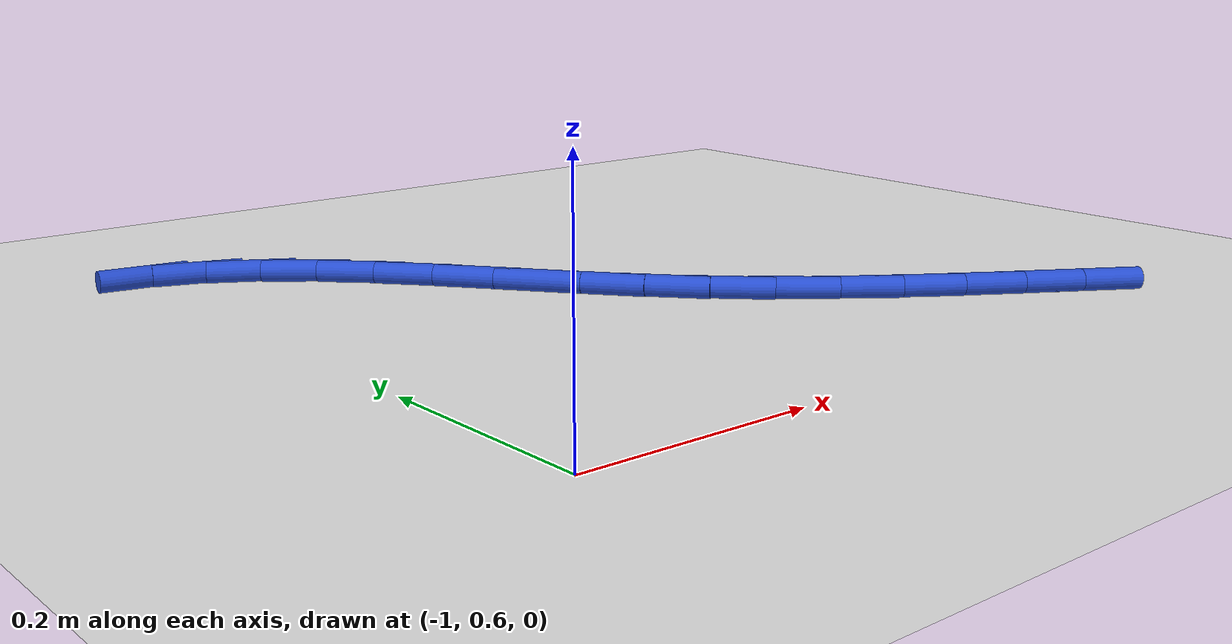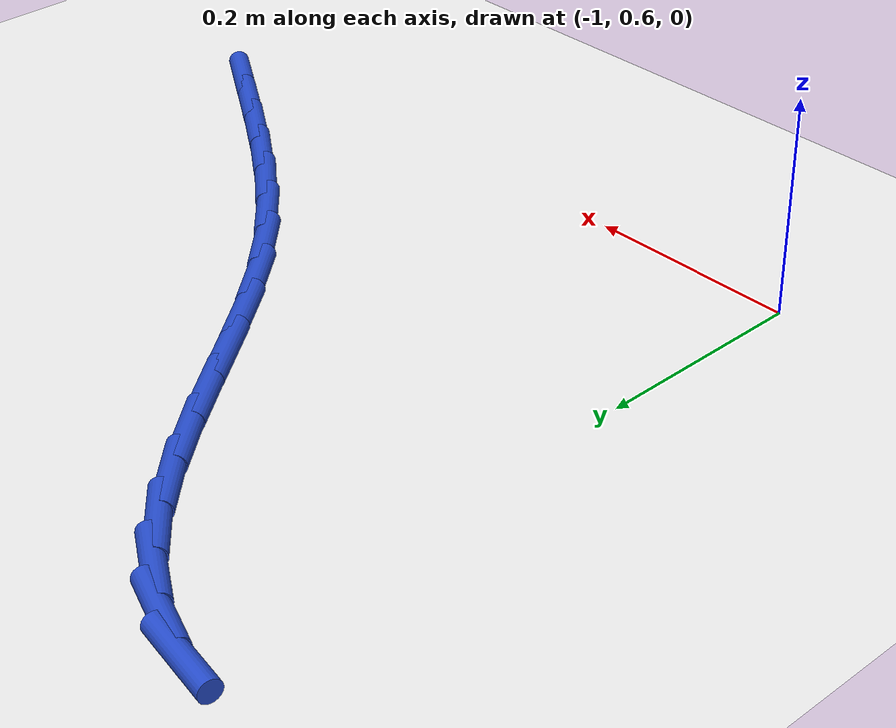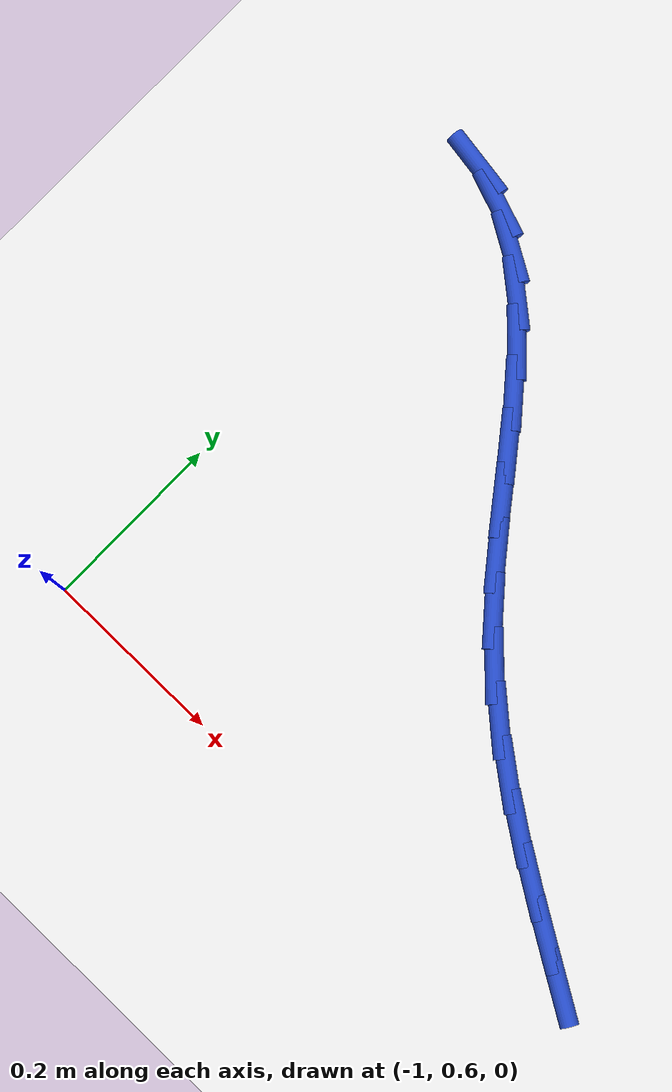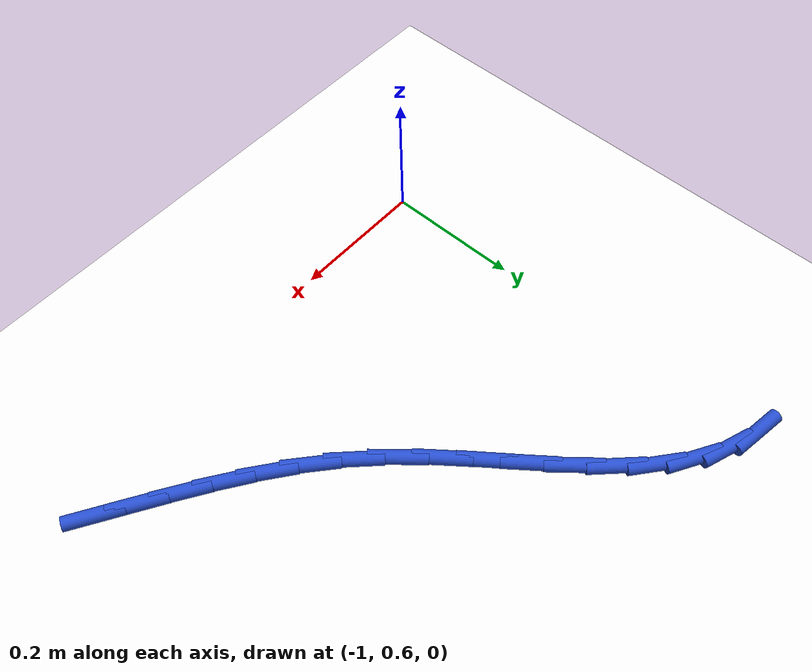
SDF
<sdf version="1.6">
 <world name="default">
  <model name="ground_plane">
   <static>1</static>
   <link name="link">
    <collision name="collision">
     <geometry><plane><normal>0 0 1</normal><size>100 100</size></plane></geometry>
     <surface><friction><ode><mu>100</mu><mu2>50</mu2></ode></friction></surface>
    </collision>
    <visual name="visual">
     <cast_shadows>0</cast_shadows>
     <geometry><plane><normal>0 0 1</normal><size>100 100</size></plane></geometry>
     <material>
      <script><uri>file://media/materials/scripts/gazebo.material</uri><name>Gazebo/WhiteGlow</name></script>
     </material>
    </visual>
   </link>
  </model>
  <model name="line">
   <link name="link_15">
    <pose>-0.3546939819626134 0.662466495526354 0.01 0 1.57 -0.5488268338579527</pose>
    <collision name="collision">
     <geometry><cylinder><radius>0.01</radius><length>0.08</length></cylinder></geometry>
    </collision>
    <visual name="visual">
     <material>
      <script><name>Gazebo/Blue</name><uri>file://media/materials/scripts/gazebo.material</uri></script>
     </material>
     <geometry><cylinder><radius>0.01</radius><length>0.08</length></cylinder></geometry>
    </visual>
   </link>
   <link name="link_16">
    <pose>-0.40119242093784674 0.6908999290058274 0.01 0 1.57 -0.5526275027685005</pose>
    <collision name="collision">
     <geometry><cylinder><radius>0.01</radius><length>0.08</length></cylinder></geometry>
    </collision>
    <visual name="visual">
     <material>
      <script><name>Gazebo/Blue</name><uri>file://media/materials/scripts/gazebo.material</uri></script>
     </material>
     <geometry><cylinder><radius>0.01</radius><length>0.08</length></cylinder></geometry>
    </visual>
   </link>
   <link name="link_17">
    <pose>-0.4480296136850266 0.7197856543433926 0.01 0 1.57 -0.571518117685264</pose>
    <collision name="collision">
     <geometry><cylinder><radius>0.01</radius><length>0.08</length></cylinder></geometry>
    </collision>
    <visual name="visual">
     <material>
      <script><name>Gazebo/Blue</name><uri>file://media/materials/scripts/gazebo.material</uri></script>
     </material>
     <geometry><cylinder><radius>0.01</radius><length>0.08</length></cylinder></geometry>
    </visual>
   </link>
   <link name="link_18">
    <pose>-0.4946151283890467 0.7497453793850645 0.01 0 1.57 -0.6053513631976803</pose>
    <collision name="collision">
     <geometry><cylinder><radius>0.01</radius><length>0.08</length></cylinder></geometry>
    </collision>
    <visual name="visual">
     <material>
      <script><name>Gazebo/Blue</name><uri>file://media/materials/scripts/gazebo.material</uri></script>
     </material>
     <geometry><cylinder><radius>0.01</radius><length>0.08</length></cylinder></geometry>
    </visual>
   </link>
   <link name="link_19">
    <pose>-0.5403585332348011 0.7814008119768582 0.01 0 1.57 -0.6540995845316362</pose>
    <collision name="collision">
     <geometry><cylinder><radius>0.01</radius><length>0.08</length></cylinder></geometry>
    </collision>
    <visual name="visual">
     <material>
      <script><name>Gazebo/Blue</name><uri>file://media/materials/scripts/gazebo.material</uri></script>
     </material>
     <geometry><cylinder><radius>0.01</radius><length>0.08</length></cylinder></geometry>
    </visual>
   </link>
   <link name="link_20">
    <pose>-0.5846693964071834 0.8153736599647887 0.01 0 1.57 -0.7176242456849777</pose>
    <collision name="collision">
     <geometry><cylinder><radius>0.01</radius><length>0.08</length></cylinder></geometry>
    </collision>
    <visual name="visual">
     <material>
      <script><name>Gazebo/Blue</name><uri>file://media/materials/scripts/gazebo.material</uri></script>
     </material>
     <geometry><cylinder><radius>0.01</radius><length>0.08</length></cylinder></geometry>
    </visual>
   </link>
   <link name="link_21">
    <pose>-0.6269572860910878 0.8522856311948712 0.01 0 1.57 -0.7944234565926547</pose>
    <collision name="collision">
     <geometry><cylinder><radius>0.01</radius><length>0.08</length></cylinder></geometry>
    </collision>
    <visual name="visual">
     <material>
      <script><name>Gazebo/Blue</name><uri>file://media/materials/scripts/gazebo.material</uri></script>
     </material>
     <geometry><cylinder><radius>0.01</radius><length>0.08</length></cylinder></geometry>
    </visual>
   </link>
   <link name="link_22">
    <pose>-0.6666614471556607 0.8927130226523813 0.01 0 1.57 -0.863158444150016</pose>
    <collision name="collision">
     <geometry><cylinder><radius>0.01</radius><length>0.08</length></cylinder></geometry>
    </collision>
    <visual name="visual">
     <material>
      <script><name>Gazebo/Blue</name><uri>file://media/materials/scripts/gazebo.material</uri></script>
     </material>
     <geometry><cylinder><radius>0.01</radius><length>0.08</length></cylinder></geometry>
    </visual>
   </link>
   <link name="link_23">
    <pose>-0.7038808536352239 0.9362226226796876 0.01 0 1.57 -0.9049411170105816</pose>
    <collision name="collision">
     <geometry><cylinder><radius>0.01</radius><length>0.08</length></cylinder></geometry>
    </collision>
    <visual name="visual">
     <material>
      <script><name>Gazebo/Blue</name><uri>file://media/materials/scripts/gazebo.material</uri></script>
     </material>
     <geometry><cylinder><radius>0.01</radius><length>0.08</length></cylinder></geometry>
    </visual>
   </link>
   <link name="link_24">
    <pose>-0.7393617668171946 0.9813907494217923 0.01 0 1.57 -0.9203500026026888</pose>
    <collision name="collision">
     <geometry><cylinder><radius>0.01</radius><length>0.08</length></cylinder></geometry>
    </collision>
    <visual name="visual">
     <material>
      <script><name>Gazebo/Blue</name><uri>file://media/materials/scripts/gazebo.material</uri></script>
     </material>
     <geometry><cylinder><radius>0.01</radius><length>0.08</length></cylinder></geometry>
    </visual>
   </link>
   <link name="link_25">
    <pose>-0.7738776360080539 1.0267521182847532 0.01 0 1.57 -0.909292951012037</pose>
    <collision name="collision">
     <geometry><cylinder><radius>0.01</radius><length>0.08</length></cylinder></geometry>
    </collision>
    <visual name="visual">
     <material>
      <script><name>Gazebo/Blue</name><uri>file://media/materials/scripts/gazebo.material</uri></script>
     </material>
     <geometry><cylinder><radius>0.01</radius><length>0.08</length></cylinder></geometry>
    </visual>
   </link>
   <link name="link_26">
    <pose>-0.8082019105142856 1.070841444674631 0.01 0 1.57 -0.8697247039332766</pose>
    <collision name="collision">
     <geometry><cylinder><radius>0.01</radius><length>0.08</length></cylinder></geometry>
    </collision>
    <visual name="visual">
     <material>
      <script><name>Gazebo/Blue</name><uri>file://media/materials/scripts/gazebo.material</uri></script>
     </material>
     <geometry><cylinder><radius>0.01</radius><length>0.08</length></cylinder></geometry>
    </visual>
   </link>
   <link name="link_27">
    <pose>-0.8431080396423716 1.1121934439974845 0.01 0 1.57 -0.7974932645867927</pose>
    <collision name="collision">
     <geometry><cylinder><radius>0.01</radius><length>0.08</length></cylinder></geometry>
    </collision>
    <visual name="visual">
     <material>
      <script><name>Gazebo/Blue</name><uri>file://media/materials/scripts/gazebo.material</uri></script>
     </material>
     <geometry><cylinder><radius>0.01</radius><length>0.08</length></cylinder></geometry>
    </visual>
   </link>
   <link name="link_28">
    <pose>-0.8793694726987944 1.1493428316593728 0.01 0 1.57 -0.6868416143710988</pose>
    <collision name="collision">
     <geometry><cylinder><radius>0.01</radius><length>0.08</length></cylinder></geometry>
    </collision>
    <visual name="visual">
     <material>
      <script><name>Gazebo/Blue</name><uri>file://media/materials/scripts/gazebo.material</uri></script>
     </material>
     <geometry><cylinder><radius>0.01</radius><length>0.08</length></cylinder></geometry>
    </visual>
   </link>
   <link name="link_29">
    <pose>-0.9177596589900365 1.1808243230663558 0.01 0 1.57 -0.5327790007540072</pose>
    <collision name="collision">
     <geometry><cylinder><radius>0.01</radius><length>0.08</length></cylinder></geometry>
    </collision>
    <visual name="visual">
     <material>
      <script><name>Gazebo/Blue</name><uri>file://media/materials/scripts/gazebo.material</uri></script>
     </material>
     <geometry><cylinder><radius>0.01</radius><length>0.08</length></cylinder></geometry>
    </visual>
   </link>
   <link name="link_30">
    <pose>-0.9590520478225806 1.2051726336244926 0.01 0 1.57 -0.34123653038327445</pose>
    <collision name="collision">
     <geometry><cylinder><radius>0.01</radius><length>0.08</length></cylinder></geometry>
    </collision>
    <visual name="visual">
     <material>
      <script><name>Gazebo/Blue</name><uri>file://media/materials/scripts/gazebo.material</uri></script>
     </material>
     <geometry><cylinder><radius>0.01</radius><length>0.08</length></cylinder></geometry>
    </visual>
   </link>
   <link name="link_31">
    <pose>-1.0039033645849538 1.2211006254452017 0.01 0 1.57 -0.15668671537446596</pose>
    <collision name="collision">
     <geometry><cylinder><radius>0.01</radius><length>0.08</length></cylinder></geometry>
    </collision>
    <visual name="visual">
     <material>
      <script><name>Gazebo/Blue</name><uri>file://media/materials/scripts/gazebo.material</uri></script>
     </material>
     <geometry><cylinder><radius>0.01</radius><length>0.08</length></cylinder></geometry>
    </visual>
   </link>
  </model>
 </world>
</sdf>
